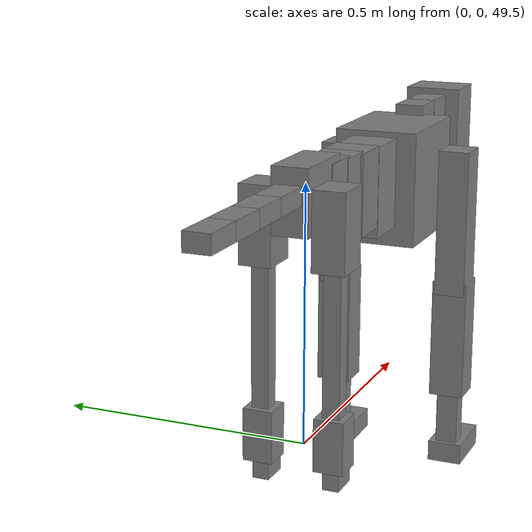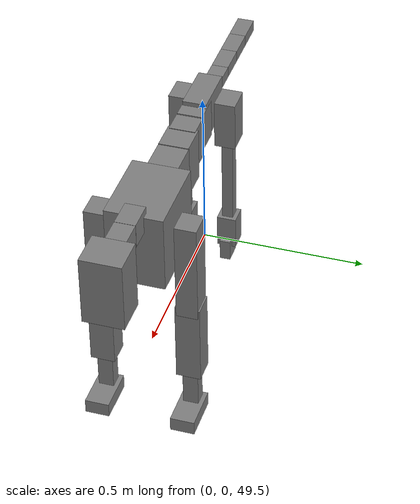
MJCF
<mujoco model="dog">

    <default>
        <joint armature="0.02" stiffness="1" damping="0.2" limited="true"/>
        <geom condim="3" friction="1 0.05 0.05" margin="0.01"/>
        <motor ctrllimited="true" ctrlrange="-1.0 1.0" forcelimited="true" gear="50"/>
    </default>

    <compiler inertiafromgeom="true" angle="radian"/>

    <option timestep="0.016" iterations="50" tolerance="1e-10" solver="Newton" jacobian="dense" cone="pyramidal"/>

    <size nconmax="20000" njmax="60000" nstack="5000000"/>
    <visual>
        <map force="0.1" zfar="30"/>
        <rgba haze="0.15 0.25 0.35 1"/>
        <quality shadowsize="2048"/>
        <global offwidth="800" offheight="800"/>
    </visual>

    <asset>
        <texture type="skybox" builtin="gradient" rgb1="0.3 0.5 0.7" rgb2="0 0 0" width="512" height="512"/>
        <texture name="texplane" type="2d" builtin="checker" rgb1=".2 .3 .4" rgb2=".1 0.15 0.2" width="512" height="512"
                 mark="cross" markrgb=".8 .8 .8"/>
        <texture name="texgeom" type="cube" builtin="flat" mark="cross" width="127" height="1278" rgb1="0.8 0.6 0.4"
                 rgb2="0.8 0.6 0.4" markrgb="1 1 1" random="0.01"/>

        <material name="matplane" reflectance="0.3" texture="texplane" texrepeat="1 1" texuniform="true"/>
        <material name="matgeom" texture="texgeom" texuniform="true" rgba="0.8 0.6 .4 1"/>
    </asset>

    <worldbody>
        <geom name="floor" pos="0 0 0" size="0 0 .25" type="plane" material="matplane" condim="3"/>

        <light directional="false" diffuse=".2 .2 .2" specular="0 0 0" pos="0 0 5" dir="0 0 -1" castshadow="false"/>
        <light mode="targetbodycom" target="torso" directional="false" diffuse=".8 .8 .8" specular="0.3 0.3 0.3"
               pos="0 0 4.0" dir="0 0 -1"/>

        <body name="root" pos="0 0 50">
            <freejoint name="root_1"/>
            <geom type="box" pos="0 0 -0.02" size="0.0774  0.0358  0.063" density="2030"/>

            <body name="spine1" pos="0.054 0 0">
                <joint name="spine1_y" axis="0 1 0" range="0 0.7" limited="true"/>
                <geom type="box" pos="0.02375 0 -0.03" size="0.04375  0.0375  0.05985" density="2030"/>

                <body name="spine2" pos="0.0612 0 0">
                    <joint name="spine2_y" axis="0 1 0" range="-0.15 0.15" limited="true"/>
                    <geom type="box" pos="0.03555  0  -0.04" size="0.04055  0.039  0.06615" density="2030"/>

                    <body name="spine3" pos="0.0730 0 0">
                        <joint name="spine3_y" axis="0 1 0" range="-0.15 0.15" limited="true"/>
                        <geom type="box" pos="0.03555  0  -0.057" size="0.04555  0.0445  0.081" density="2030"/>

                        <body name="spine4" pos="0.0780 0 0">
                            <joint name="spine4_y" axis="0 1 0" range="-0.15 0.15" limited="true"/>
                            <geom type="box" pos="0.05265  0  -0.07" size="0.05265  0.045  0.09135" density="2030"/>

                            <body name="torso" pos="0.1082 0 0">
                                <joint name="torso_y" axis="0 1 0" range="-0.15 0.15" limited="true"/>
                                <geom type="box" pos="0.11925  0  -0.085" size="0.11925  0.085  0.11745"
                                      density="2030"/>

                                <body name="neck1" pos="0.2160  0   0.0180">
                                    <joint name="neck1_y" axis="0 1 0" range="-1.2  -1" limited="true"/>
                                    <geom type="box" pos="0.0423  0  0" size="0.0423  0.03  0.036" density="2325"/>

                                    <body name="neck2" pos="0.0853  0  0">
                                        <joint name="neck2_y" axis="0 1 0" range="0.1  0" limited="true"/>
                                        <geom type="box" pos="0.0423  0  0" size="0.0423  0.03  0.036" density="2325"/>

                                        <body name="head" pos="0.0853  0  0">
                                            <joint name="head_y" axis="0 1 0" range="-0.3  -0.2" limited="true"/>
                                            <geom type="box" pos="0.0531  0  -0.055" size="0.0531  0.06  0.1044"
                                                  density="4030"/>

                                        </body>
                                    </body>
                                </body>

                                <body name="front_shoulder" pos="0.156  0   -0.0480">
                                    <joint name="front_shoulder_y" axis="0 1 0" range="-1 1.5" limited="true"/>
                                    <geom type="box" pos="0 0.13 -0.1281" size="0.0375  0.0320  0.1547" density="1158"/>
                                    <geom type="box" pos="0 -0.13 -0.1281" size="0.0375  0.0320  0.1547"
                                          density="1158"/>

                                    <body name="front_elbow" pos="0  0  -0.2562">
                                        <joint name="front_elbow_y" axis="0 1 0" range="-2 0" limited="true"/>
                                        <geom type="box" pos="0 0.13 -0.1265" size="0.0357  0.0365  0.1265"
                                              density="1081"/>
                                        <geom type="box" pos="0 -0.13 -0.1265" size="0.0357  0.0365  0.1265"
                                              density="1081"/>

                                        <body name="front_wrist" pos="0  0  -0.2530">
                                            <joint name="front_wrist_y" axis="0 1 0" range="-0.2 0" limited="true"/>
                                            <geom type="box" pos="0 0.13 -0.0636" size="0.0205  0.0228  0.0767"
                                                  density="1664"/>
                                            <geom type="box" pos="0 -0.13 -0.0636" size="0.0205  0.0228  0.0767"
                                                  density="1664"/>

                                            <body name="front_finger_end" pos="0  0  -0.1272">
                                                <joint name="front_finger_y" axis="0 1 0" range="-0.4 1"
                                                       limited="true"/>
                                                <geom type="box" pos="0.0361  0.13  -0.0068"
                                                      size="0.0662  0.0361  0.0218" density="1515"/>
                                                <geom type="box" pos="0.0361  -0.13  -0.0068"
                                                      size="0.0662  0.0361  0.0218" density="1515"/>

                                            </body>

                                        </body>
                                    </body>
                                </body>

                            </body>
                        </body>
                    </body>
                </body>
            </body>

            <body name="back_hip" pos="-0.03 0 -0.018">
                <joint name="back_hip_y" axis="0 1 0" range="-1.5 0.3" limited="true"/>
                <geom type="box" pos="0 0.07 -0.0525" size="0.0403  0.0316  0.0753" density="1154"/>
                <geom type="box" pos="0 -0.07 -0.0525" size="0.0403  0.0316  0.0753" density="1154"/>

                <body name="back_knee" pos="0  0  -0.1051">
                    <joint name="back_knee_y" axis="0 1 0" range="0 2.8" limited="true"/>
                    <geom type="box" pos="0 0.07 -0.1555" size="0.0171  0.0168  0.1710" density="1227"/>
                    <geom type="box" pos="0 -0.07 -0.1555" size="0.0171  0.0168  0.1710" density="1227"/>

                    <body name="back_ankle" pos="0  0  -0.3110">
                        <joint name="back_ankle_y" axis="0 1 0" range="-2.2 0" limited="true"/>
                        <geom type="box" pos="0 0.07 -0.0402" size="0.0292  0.0292  0.0514" density="1284"/>
                        <geom type="box" pos="0 -0.07 -0.0402" size="0.0292  0.0292  0.0514" density="1284"/>

                        <body name="back_toe_end" pos="0  0  -0.0804">
                            <joint name="back_toe_y" axis="0 1 0" range="-0.4 1" limited="true"/>
                            <geom type="box" pos="0.0162  0.07  -0.0181" size="0.0297  0.0162  0.0331" density="1515"/>
                            <geom type="box" pos="0.0162  -0.07  -0.0181" size="0.0297  0.0162  0.0331" density="1515"/>

                        </body>
                    </body>
                </body>
            </body>

            <body name="tail1" pos="-0.074 0 -0.006">
                <joint name="tail1_y" axis="0 1 0" range="-0.2 0.2" limited="true"/>
                <geom type="box" pos="-0.0536  0  0" size="0.045  0.025  0.0175" density="1587"/>

                <body name="tail2" pos="-0.09 0 0">
                    <joint name="tail2_y" axis="0 1 0" range="-0.2 0.2" limited="true"/>
                    <geom type="box" pos="-0.0536  0  0" size="0.045  0.025  0.0175" density="1587"/>

                    <body name="tail3" pos="-0.09 0 0">
                        <joint name="tail3_y" axis="0 1 0" range="-0.2 0.2" limited="true"/>
                        <geom type="box" pos="-0.0536  0  0" size="0.045  0.025  0.0175" density="1587"/>

                        <body name="tail4" pos="-0.09 0 0">
                            <joint name="tail4_y" axis="0 1 0" range="-0.2 0.2" limited="true"/>
                            <geom type="box" pos="-0.0536  0  0" size="0.045  0.025  0.0175" density="1587"/>

                        </body>
                    </body>
                </body>
            </body>
        </body>
    </worldbody>

    <actuator>
        <motor joint="spine1_y" forcerange="-150 150     "/>
        <motor joint="spine2_y" forcerange="-150 150     "/>
        <motor joint="spine3_y" forcerange="-150 150     "/>
        <motor joint="spine4_y" forcerange="-150 150     "/>
        <motor joint="torso_y" forcerange="-150 150     "/>
        <motor joint="neck1_y" forcerange="-100 100       "/>
        <motor joint="neck2_y" forcerange="-100 100       "/>
        <motor joint="head_y" forcerange="-150 150       "/>
        <motor joint="front_shoulder_y" forcerange="-166.98 146.49"/>
        <motor joint="front_elbow_y" forcerange="-189.72 175.66"/>
        <motor joint="front_wrist_y" forcerange="-52.87 129.15"/>
        <motor joint="front_finger_y" forcerange="-68.43 84.20"/>
        <motor joint="back_hip_y" forcerange="-282.42 338.51"/>
        <motor joint="back_knee_y" forcerange="-241.49 203.37"/>
        <motor joint="back_angle_y" forcerange="-130.07 237.75"/>
        <motor joint="back_toe_y" forcerange="-25.40 24.27"/>
        <motor joint="tail1_y" forcerange="-50 50     "/>
        <motor joint="tail2_y" forcerange="-50 50     "/>
        <motor joint="tail3_y" forcerange="-50 50     "/>
        <motor joint="tail4_y" forcerange="-50 50     "/>
    </actuator>
</mujoco>
